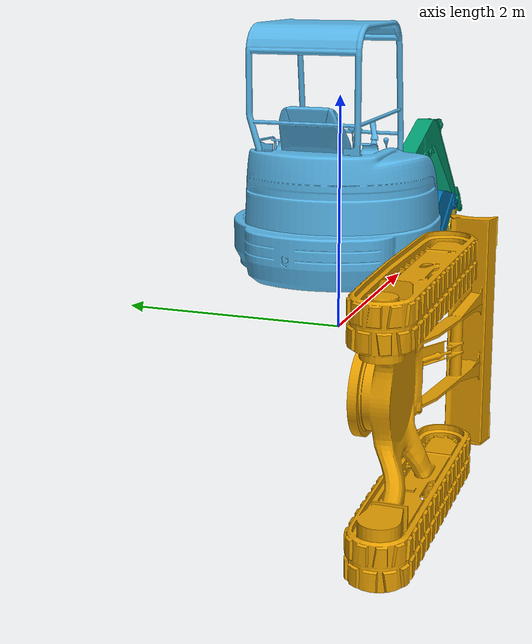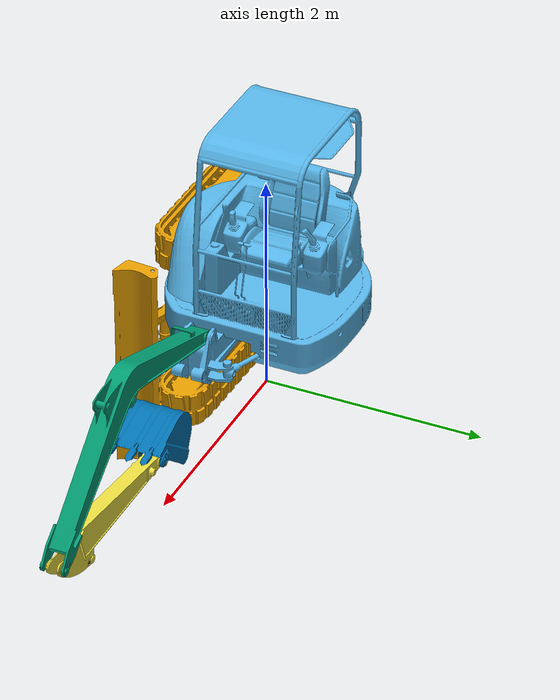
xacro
<?xml version="1.0"?>
<robot xmlns:xacro="http://www.ros.org/wiki/xacro" name="excavator">
    <xacro:arg name="add_world" default="true"/>
    <xacro:arg name="base_link" default="base_link"/>
    <xacro:arg name="use_lidar" default="false"/>
    <xacro:arg name="use_gazebo" default="false"/>

    <xacro:include filename="$(find excavator_hardware_interface)/excavator_description/urdf/mech/excavator_mech.urdf.xacro"/>
    <xacro:excavator
            base_link="$(arg base_link)">
    </xacro:excavator>

    <xacro:include filename="$(find excavator_hardware_interface)/excavator_description/urdf/control/gazebo_sim_ros2_control.urdf.xacro" />
    <xacro:load_gazebo_sim_ros2_control_plugin
            use_gazebo="$(arg use_gazebo)"/>

    <xacro:include filename="$(find excavator_hardware_interface)/excavator_description/urdf/control/excavator_ros2_control.urdf.xacro" />
    <xacro:excavator_ros2_control
            use_gazebo="$(arg use_gazebo)"/>

    <xacro:include filename="$(find excavator_hardware_interface)/excavator_description/urdf/sensors/lidar.urdf.xacro"/>
    <xacro:lidar
        parent_link="cabin_link"
        use_lidar="arg use_lidar"
        use_gazebo="arg use_gazebo">
        <origin xyz="0.4 0.0 1.3" rpy="0 0.2 0"/>
    </xacro:lidar>

</robot>

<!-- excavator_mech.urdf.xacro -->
<!-- Basic differential drive mobile base -->
<robot xmlns:xacro="http://www.ros.org/wiki/xacro">

  <xacro:property name="joint_effort" value="30.0"/>
  <xacro:property name="joint_velocity" value="2.792527"/>
  <xacro:property name="joint_damping" value="0.0"/>
  <xacro:property name="joint_friction" value="0.0"/>

  <xacro:property name="base_mass" value="10.12"/>
  <xacro:property name="cabin_mass" value="0.19"/>
  <xacro:property name="arm1_mass" value="0.16"/>
  <xacro:property name="arm2_mass" value="0.124"/>
  <xacro:property name="ladle_mass" value="0.11"/>

  <xacro:property name="wheel_radius" value="0.15"/>
  <xacro:property name="wheel_width" value="0.1"/>
  <xacro:property name="wheel_xoff" value="1.08"/>
  <xacro:property name="wheel_zoff" value="-1.15"/>
  <xacro:property name="wheel_ygap" value="0.5"/>

  <xacro:macro name="link_inertial" params="mass ixx iyy izz">
    <inertial>
      <origin xyz="0 0 0.0" rpy="0 0 0"/>
      <mass value="${mass}"/>
      <inertia
          ixx="${ixx}" ixy="0.0" ixz="0.0"
          iyy="${iyy}" iyz="0.0"
          izz="${izz}"/>
    </inertial>
  </xacro:macro>

  <xacro:macro name="cylinder_inertia" params="mass length radius *origin">
    <inertial>
      <xacro:insert_block name="origin"/>
      <mass value="${mass}" />
      <inertia ixx="${(1/12) * mass * (3*radius*radius + length*length)}" ixy="0.0" ixz="0.0"
               iyy="${(1/12) * mass * (3*radius*radius + length*length)}" iyz="0.0"
               izz="${(1/2) * mass * (radius*radius)}" />
    </inertial>
  </xacro:macro>

  <xacro:macro name="wheel" params="prefix x_reflect y_reflect">
    <link name="${prefix}_link">
    <collision>
      <origin xyz="0 0 0" rpy="${pi/2} 0 0"/>
      <geometry>
        <cylinder radius="${wheel_radius}" length="${wheel_width}"/>
      </geometry>
    </collision>

    <xacro:cylinder_inertia mass="0.05" length="${wheel_width}" radius="${wheel_radius}">
      <origin xyz="0 0 0" rpy="0 0 0"/>
    </xacro:cylinder_inertia>
    </link>

    <joint name="${prefix}_joint" type="revolute">
      <parent link="base_link"/>
      <child link="${prefix}_link"/>
      <origin xyz="${x_reflect*wheel_xoff} ${y_reflect*(1.0/2+wheel_ygap)} ${wheel_zoff}" rpy="0 0 0"/>
      <axis xyz="0 1 0"/>
      <limit effort="30" velocity="1.0" lower="-1.79769e+38" upper="1.79769e+38" />
    </joint>
  </xacro:macro>

  <xacro:macro name="material_visual" params="ref_link ambient diffuse specular">
    <gazebo reference="${ref_link}">
      <visual>
        <material>
          <ambient>${ambient}</ambient>
          <diffuse>${diffuse}</diffuse>
          <specular>${specular}</specular>
        </material>
      </visual>
    </gazebo>
  </xacro:macro>

  <xacro:macro name="excavator" params="base_link">

    <!-- Robot Base -->
    <link name="base_link">
    <visual>
      <geometry>
        <mesh filename="file://$(find excavator_hardware_interface)/excavator_description/meshes/visual/Down.dae"/>
      </geometry>
    </visual>
    <collision>
      <geometry>
        <mesh filename="file://$(find excavator_hardware_interface)/excavator_description/meshes/collision/Down.stl"/>
      </geometry>
    </collision>
    <xacro:link_inertial mass="${base_mass}" ixx="0.000148" iyy="0.000148" izz="0.000096"/>
    </link>

    <link name="cabin_link">
    <visual>
      <geometry>
        <mesh filename="file://$(find excavator_hardware_interface)/excavator_description/meshes/visual/Cabin.dae"/>
      </geometry>
    </visual>
    <collision>
      <geometry>
        <mesh filename="file://$(find excavator_hardware_interface)/excavator_description/meshes/collision/Cabin.stl"/>
      </geometry>
    </collision>
    <xacro:link_inertial mass="${cabin_mass}" ixx="0.000148" iyy="0.000148" izz="0.000096"/>
    </link>

    <link name="arm_one_link">
    <visual>
      <geometry>
        <mesh filename="file://$(find excavator_hardware_interface)/excavator_description/meshes/visual/Arm1.dae"/>
      </geometry>
    </visual>
    <collision>
      <geometry>
        <mesh filename="file://$(find excavator_hardware_interface)/excavator_description/meshes/collision/Arm1.stl"/>
      </geometry>
    </collision>
    <xacro:link_inertial mass="${arm1_mass}" ixx="0.000148" iyy="0.000148" izz="0.000096"/>
    </link>

    <link name="arm_two_link">
    <visual>
      <geometry>
        <mesh filename="file://$(find excavator_hardware_interface)/excavator_description/meshes/visual/Arm2.dae"/>
      </geometry>
    </visual>
    <collision>
      <geometry>
        <mesh filename="file://$(find excavator_hardware_interface)/excavator_description/meshes/collision/Arm2.stl"/>
      </geometry>
    </collision>
    <xacro:link_inertial mass="${arm2_mass}" ixx="0.000148" iyy="0.000148" izz="0.000096"/>
    </link>

    <link name="ladle_link">
    <visual>
      <geometry>
        <mesh filename="file://$(find excavator_hardware_interface)/excavator_description/meshes/visual/Ladle2.dae"/>
      </geometry>
    </visual>
    <collision>
      <geometry>
        <mesh filename="file://$(find excavator_hardware_interface)/excavator_description/meshes/collision/Ladle2.stl"/>
      </geometry>
    </collision>
    <xacro:link_inertial mass="${ladle_mass}" ixx="0.000148" iyy="0.000148" izz="0.000096"/>
    </link>

    <joint name="cabin_joint" type="revolute">
      <parent link="base_link"/>
      <child link="cabin_link"/>
      <origin xyz="0.0 0.0 1.3" rpy="0 0 0"/>
      <limit effort="${joint_effort}" lower="-1.56" upper="1.56" velocity="${joint_velocity}"/>
      <dynamics damping="${joint_damping}" friction="${joint_friction}"/>
      <axis xyz="0 0 1"/>
    </joint>

    <joint name="arm_one_joint" type="revolute">
      <parent link="cabin_link"/>
      <child link="arm_one_link"/>
      <origin xyz="0.95 -0.17 -0.28" rpy="0 0 0"/>
      <limit effort="${joint_effort}" lower="-1.6" upper="0.0001" velocity="${joint_velocity}"/>
      <dynamics damping="${joint_damping}" friction="${joint_friction}"/>
      <axis xyz="0 1 0"/>
    </joint>

    <joint name="arm_two_joint" type="revolute">
      <parent link="arm_one_link"/>
      <child link="arm_two_link"/>
      <origin xyz="2.66 0.0 -0.62" rpy="0 0 0"/>
      <limit effort="${joint_effort}" lower="-1.6" upper="0.0001" velocity="${joint_velocity}"/>
      <dynamics damping="${joint_damping}" friction="${joint_friction}"/>
      <axis xyz="0 1 0"/>
    </joint>

    <joint name="ladle_joint" type="revolute">
      <parent link="arm_two_link"/>
      <child link="ladle_link"/>
      <origin xyz="-1.755 0.0 -0.065" rpy="0 0 0"/>
      <limit effort="${joint_effort}" lower="-1.6" upper="0.0001" velocity="${joint_velocity}"/>
      <dynamics damping="${joint_damping}" friction="${joint_friction}"/>
      <axis xyz="0 1 0"/>
    </joint>

    <link name="tool0"/>

    <joint name="joint_tool0" type="fixed">
      <parent link="ladle_link"/>
      <child link="tool0"/>
      <origin rpy="0 0 0" xyz="0 0 0"/>
    </joint>

    <xacro:material_visual ref_link="base_link" ambient="0.5 0.5 0.5 1" diffuse="0.5 0.5 0.5 1" specular="0.5 0.5 0.5 1"/>
    <xacro:material_visual ref_link="cabin_link" ambient="1 1 1 1" diffuse="1 1 1 1" specular="1 1 1 1"/>
    <xacro:material_visual ref_link="arm1_link" ambient="1 1 1 1" diffuse="1 1 1 1" specular="1 1 1 1"/>
    <xacro:material_visual ref_link="arm2_link" ambient="1 1 1 1" diffuse="1 1 1 1" specular="1 1 1 1"/>
    <xacro:material_visual ref_link="ladle_link" ambient="1 1 1 1" diffuse="1 1 1 1" specular="1 1 1 1"/>

    <gazebo>
<!--          filename="gz-sim-diff-drive-system"-->
<!--          name="gz::sim::systems::DiffDrive">-->

      <plugin filename="gz-sim-joint-state-publisher-system"
              name="gz::sim::systems::JointStatePublisher">
        <topic>joint_states</topic>
        <joint_name>tool0</joint_name>
        <joint_name>ladle_link</joint_name>
        <joint_name>arm_two_link</joint_name>
        <joint_name>arm_one_link</joint_name>
        <joint_name>cabin_link</joint_name>
        <joint_name>base_joint</joint_name>
      </plugin>
    </gazebo>

  </xacro:macro>

</robot>
